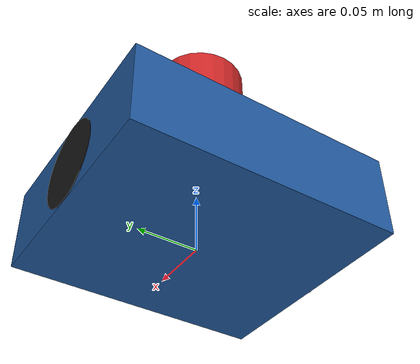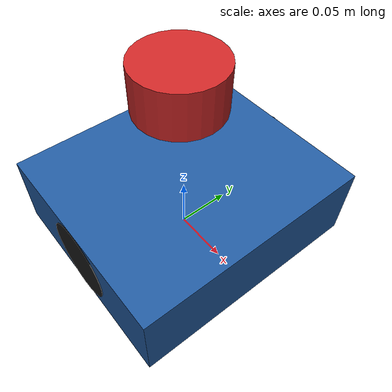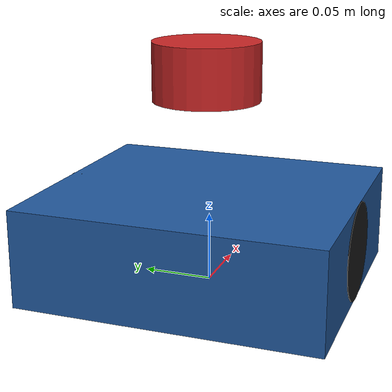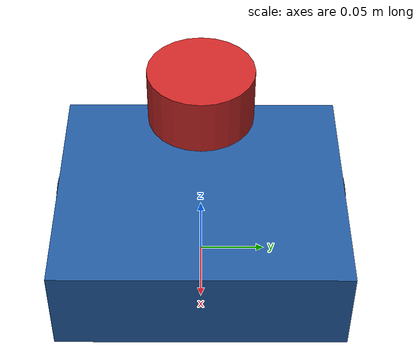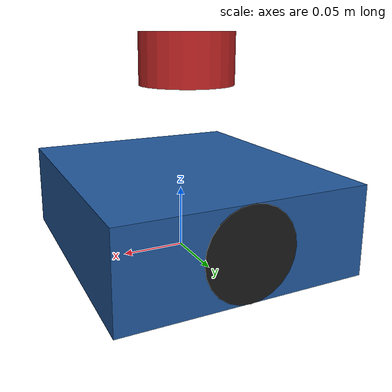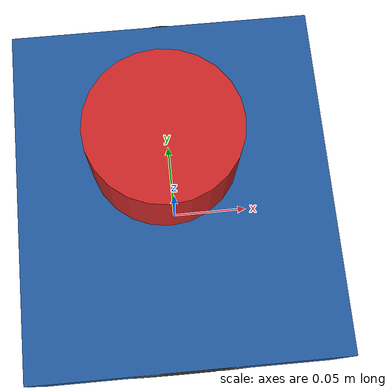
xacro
<?xml version="1.0"?>
<robot name="atriz_rvr" xmlns:xacro="http://www.ros.org/wiki/xacro">

  <xacro:property name="base_length" value="0.190"/>   <!-- X, frente-atrás   ✅ medido 2026-08-02 -->
  <xacro:property name="base_width"  value="0.217"/>   <!-- Y, lado a lado    ✅ medido -->
  <xacro:property name="base_height" value="0.070"/>   <!-- Z, suelo a la tapa ✅ medido -->

  <xacro:property name="wheel_radius"    value="0.035"/>   <!-- ✅ medido 2026-07-31 -->
  <xacro:property name="wheel_width"     value="0.035"/>   <!-- ✅ medido 2026-07-31 -->
  <!-- ✅ 0.183 = 0.148 (borde interno a borde interno) + 0.035 (un ancho de
       oruga) = distancia entre CENTROS. Medido el 2026-07-31.
       Cuadra: 0.148 + 2×0.035 = 0.218 ≈ 0.217 de ancho total. -->
  <xacro:property name="wheel_separation" value="0.183"/>  <!-- entre centros, eje Y -->

  <xacro:property name="laser_x"   value="-0.005"/>  <!-- ✅ medido 2026-08-02 -->
  <xacro:property name="laser_y"   value="0.0"/>     <!-- ✅ medido 2026-08-02 -->
  <xacro:property name="laser_gap" value="0.046"/>   <!-- tapa → base del LIDAR ✅ -->
  <xacro:property name="x2_height" value="0.050"/>   <!-- alto del X2 ✅ medido -->
  <!-- 🔴 VALOR DIRECTO, no la suma. La suma daba 0.1745 con una ficha
       equivocada; esto está medido con una regla desde el suelo. -->
  <xacro:property name="laser_z"   value="0.155"/>

  <xacro:property name="imu_x" value="0.0"/>
  <xacro:property name="imu_y" value="0.0"/>
  <xacro:property name="imu_z" value="0.05"/>

  <xacro:property name="PI" value="3.14159265359"/>

  <!-- Colores, solo para RViz2 -->
  <material name="azul_atriz"><color rgba="0.13 0.35 0.62 1.0"/></material>
  <material name="negro">     <color rgba="0.10 0.10 0.10 1.0"/></material>
  <material name="rojo">      <color rgba="0.80 0.15 0.15 1.0"/></material>

  <link name="base_footprint"/>

  <joint name="base_footprint_to_base_link" type="fixed">
    <parent link="base_footprint"/>
    <child  link="base_link"/>
    <origin xyz="0 0 ${wheel_radius}" rpy="0 0 0"/>
  </joint>

  <link name="base_link">
    <visual>
      <origin xyz="0 0 ${base_height/2 - wheel_radius}" rpy="0 0 0"/>
      <geometry><box size="${base_length} ${base_width} ${base_height}"/></geometry>
      <material name="azul_atriz"/>
    </visual>
    <collision>
      <origin xyz="0 0 ${base_height/2 - wheel_radius}" rpy="0 0 0"/>
      <geometry><box size="${base_length} ${base_width} ${base_height}"/></geometry>
    </collision>
    <inertial>
      <!-- 1.2 kg es la masa publicada del RVR. La inercia es la de una caja
           homogénea: aproximada, y solo la usaría un simulador. No hay
           simulación en este proyecto. -->
      <mass value="1.2"/>
      <origin xyz="0 0 ${base_height/2 - wheel_radius}"/>
      <inertia
        ixx="${1.2/12 * (base_width*base_width + base_height*base_height)}" ixy="0" ixz="0"
        iyy="${1.2/12 * (base_length*base_length + base_height*base_height)}" iyz="0"
        izz="${1.2/12 * (base_length*base_length + base_width*base_width)}"/>
    </inertial>
  </link>

  <joint name="base_link_to_laser" type="fixed">
    <parent link="base_link"/>
    <child  link="laser"/>
    <!-- z relativo a base_link, que ya está a wheel_radius del suelo -->
    <origin xyz="${laser_x} ${laser_y} ${laser_z - wheel_radius}" rpy="0 0 0"/>
  </joint>

  <link name="laser">
    <visual>
      <geometry><cylinder radius="0.038" length="0.041"/></geometry>
      <material name="rojo"/>
    </visual>
    <collision>
      <geometry><cylinder radius="0.038" length="0.041"/></geometry>
    </collision>
  </link>

  <!-- ════════════════════════════════════════════════════════════════════════
       imu_link — la IMU interna del RVR.
       ════════════════════════════════════════════════════════════════════════ -->
  <joint name="base_link_to_imu" type="fixed">
    <parent link="base_link"/>
    <child  link="imu_link"/>
    <origin xyz="${imu_x} ${imu_y} ${imu_z - wheel_radius}" rpy="0 0 0"/>
  </joint>
  <link name="imu_link"/>

  <xacro:macro name="rueda" params="nombre y">
    <joint name="base_link_to_${nombre}" type="fixed">
      <parent link="base_link"/>
      <child  link="${nombre}"/>
      <origin xyz="0 ${y} 0" rpy="${-PI/2} 0 0"/>
    </joint>
    <link name="${nombre}">
      <visual>
        <geometry><cylinder radius="${wheel_radius}" length="${wheel_width}"/></geometry>
        <material name="negro"/>
      </visual>
    </link>
  </xacro:macro>

  <xacro:rueda nombre="wheel_left"  y="${ wheel_separation/2}"/>
  <xacro:rueda nombre="wheel_right" y="${-wheel_separation/2}"/>

</robot>
